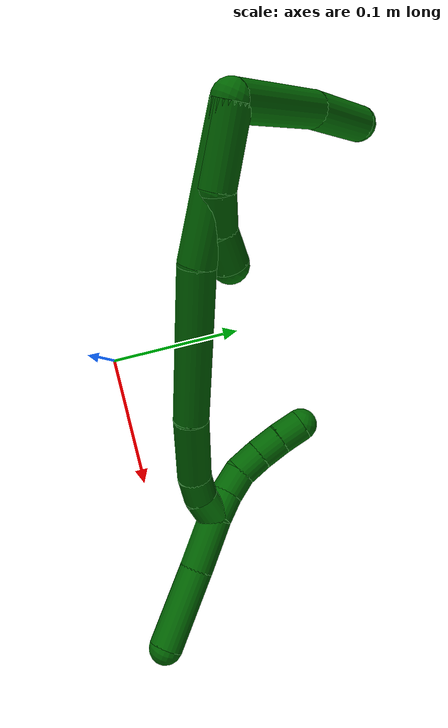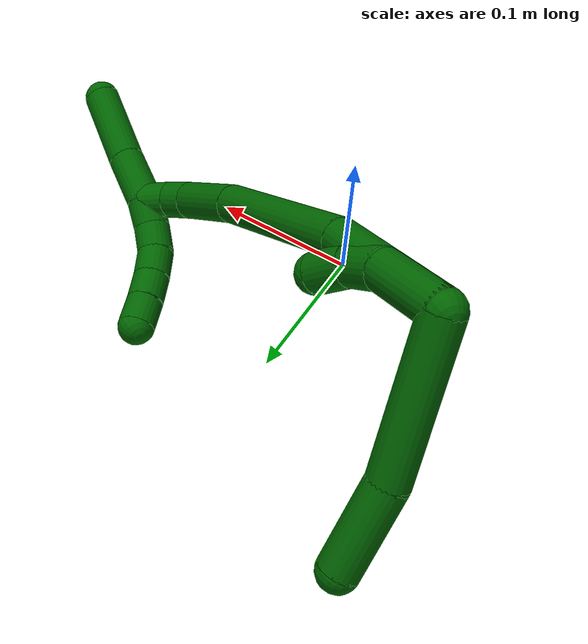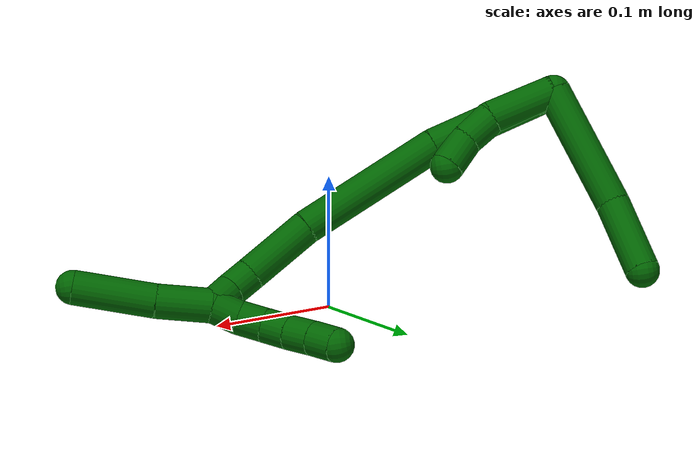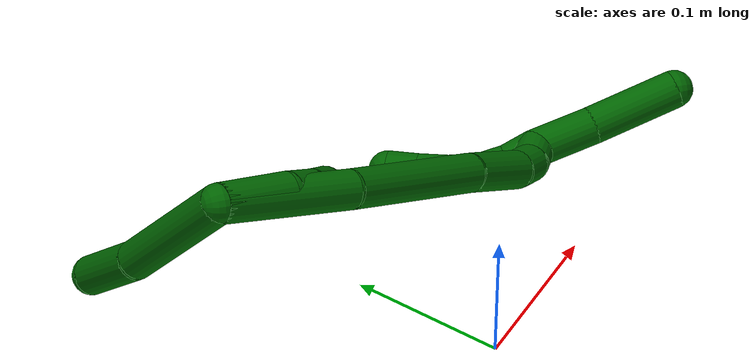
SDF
<sdf version="1.7">
 <world name="default">
  <model name="6">
   <static>0</static>
   <link name="6">
    <collision name="collision-cylinder-e_1_2_8">
     <pose>-0.021335 0.039467 0.014439 -1.22007 -0.469765 0.331458</pose>
     <geometry><cylinder><radius>0.0125</radius><length>0.094262</length></cylinder></geometry>
     <surface>
      <friction><ode><mu>1.16</mu><mu2>1.16</mu2><slip1>0</slip1><slip2>0</slip2></ode></friction>
      <contact><ode><kp>1e+06</kp><kd>1</kd><max_vel>0</max_vel><min_depth>0.001</min_depth></ode></contact>
     </surface>
    </collision>
    <visual name="visual-cylinder-e_1_2_8">
     <pose>-0.021335 0.039467 0.014439 -1.22007 -0.469765 0.331458</pose>
     <geometry><cylinder><radius>0.0125</radius><length>0.094262</length></cylinder></geometry>
     <material><ambient>0 0.392157 0.003922 1</ambient></material>
    </visual>
    <collision name="collision-cylinder-e_2_8_6">
     <pose>-0.050918 0.104812 0.035121 -1.33409 -0.30044 0.237259</pose>
     <geometry><cylinder><radius>0.0125</radius><length>0.055738</length></cylinder></geometry>
     <surface>
      <friction><ode><mu>1.16</mu><mu2>1.16</mu2><slip1>0</slip1><slip2>0</slip2></ode></friction>
      <contact><ode><kp>1e+06</kp><kd>1</kd><max_vel>0</max_vel><min_depth>0.001</min_depth></ode></contact>
     </surface>
    </collision>
    <visual name="visual-cylinder-e_2_8_6">
     <pose>-0.050918 0.104812 0.035121 -1.33409 -0.30044 0.237259</pose>
     <geometry><cylinder><radius>0.0125</radius><length>0.055738</length></cylinder></geometry>
     <material><ambient>0 0.392157 0.003922 1</ambient></material>
    </visual>
    <collision name="collision-cylinder-e_1_2_9">
     <pose>-0.001204 0.006618 -0.023984 -2.87236 -0.04835 0.353343</pose>
     <geometry><cylinder><radius>0.0125</radius><length>0.049819</length></cylinder></geometry>
     <surface>
      <friction><ode><mu>1.16</mu><mu2>1.16</mu2><slip1>0</slip1><slip2>0</slip2></ode></friction>
      <contact><ode><kp>1e+06</kp><kd>1</kd><max_vel>0</max_vel><min_depth>0.001</min_depth></ode></contact>
     </surface>
    </collision>
    <visual name="visual-cylinder-e_1_2_9">
     <pose>-0.001204 0.006618 -0.023984 -2.87236 -0.04835 0.353343</pose>
     <geometry><cylinder><radius>0.0125</radius><length>0.049819</length></cylinder></geometry>
     <material><ambient>0 0.392157 0.003922 1</ambient></material>
    </visual>
    <collision name="collision-cylinder-e_2_9_10">
     <pose>-0.004356 0.020109 -0.058242 -2.55199 -0.156343 0.504927</pose>
     <geometry><cylinder><radius>0.0125</radius><length>0.025026</length></cylinder></geometry>
     <surface>
      <friction><ode><mu>1.16</mu><mu2>1.16</mu2><slip1>0</slip1><slip2>0</slip2></ode></friction>
      <contact><ode><kp>1e+06</kp><kd>1</kd><max_vel>0</max_vel><min_depth>0.001</min_depth></ode></contact>
     </surface>
    </collision>
    <visual name="visual-cylinder-e_2_9_10">
     <pose>-0.004356 0.020109 -0.058242 -2.55199 -0.156343 0.504927</pose>
     <geometry><cylinder><radius>0.0125</radius><length>0.025026</length></cylinder></geometry>
     <material><ambient>0 0.392157 0.003922 1</ambient></material>
    </visual>
    <collision name="collision-cylinder-e_3_10_5">
     <pose>-0.008104 0.036605 -0.076411 -2.25789 -0.143591 0.301759</pose>
     <geometry><cylinder><radius>0.0125</radius><length>0.025155</length></cylinder></geometry>
     <surface>
      <friction><ode><mu>1.16</mu><mu2>1.16</mu2><slip1>0</slip1><slip2>0</slip2></ode></friction>
      <contact><ode><kp>1e+06</kp><kd>1</kd><max_vel>0</max_vel><min_depth>0.001</min_depth></ode></contact>
     </surface>
    </collision>
    <visual name="visual-cylinder-e_3_10_5">
     <pose>-0.008104 0.036605 -0.076411 -2.25789 -0.143591 0.301759</pose>
     <geometry><cylinder><radius>0.0125</radius><length>0.025155</length></cylinder></geometry>
     <material><ambient>0 0.392157 0.003922 1</ambient></material>
    </visual>
    <collision name="collision-cylinder-e_1_2_11">
     <pose>-0.004779 0.01209 -0.046139 -2.88533 -0.099859 0.739986</pose>
     <geometry><cylinder><radius>0.0125</radius><length>0.09587</length></cylinder></geometry>
     <surface>
      <friction><ode><mu>1.16</mu><mu2>1.16</mu2><slip1>0</slip1><slip2>0</slip2></ode></friction>
      <contact><ode><kp>1e+06</kp><kd>1</kd><max_vel>0</max_vel><min_depth>0.001</min_depth></ode></contact>
     </surface>
    </collision>
    <visual name="visual-cylinder-e_1_2_11">
     <pose>-0.004779 0.01209 -0.046139 -2.88533 -0.099859 0.739986</pose>
     <geometry><cylinder><radius>0.0125</radius><length>0.09587</length></cylinder></geometry>
     <material><ambient>0 0.392157 0.003922 1</ambient></material>
    </visual>
    <collision name="collision-cylinder-e_2_11_12">
     <pose>-0.015637 0.047989 -0.141786 -2.69333 -0.110222 0.474872</pose>
     <geometry><cylinder><radius>0.0125</radius><length>0.110542</length></cylinder></geometry>
     <surface>
      <friction><ode><mu>1.16</mu><mu2>1.16</mu2><slip1>0</slip1><slip2>0</slip2></ode></friction>
      <contact><ode><kp>1e+06</kp><kd>1</kd><max_vel>0</max_vel><min_depth>0.001</min_depth></ode></contact>
     </surface>
    </collision>
    <visual name="visual-cylinder-e_2_11_12">
     <pose>-0.015637 0.047989 -0.141786 -2.69333 -0.110222 0.474872</pose>
     <geometry><cylinder><radius>0.0125</radius><length>0.110542</length></cylinder></geometry>
     <material><ambient>0 0.392157 0.003922 1</ambient></material>
    </visual>
    <collision name="collision-cylinder-e_3_12_13">
     <pose>-0.026159 0.085726 -0.213392 -2.5792 -0.16845 0.56872</pose>
     <geometry><cylinder><radius>0.0125</radius><length>0.052993</length></cylinder></geometry>
     <surface>
      <friction><ode><mu>1.16</mu><mu2>1.16</mu2><slip1>0</slip1><slip2>0</slip2></ode></friction>
      <contact><ode><kp>1e+06</kp><kd>1</kd><max_vel>0</max_vel><min_depth>0.001</min_depth></ode></contact>
     </surface>
    </collision>
    <visual name="visual-cylinder-e_3_12_13">
     <pose>-0.026159 0.085726 -0.213392 -2.5792 -0.16845 0.56872</pose>
     <geometry><cylinder><radius>0.0125</radius><length>0.052993</length></cylinder></geometry>
     <material><ambient>0 0.392157 0.003922 1</ambient></material>
    </visual>
    <collision name="collision-cylinder-e_4_13_14">
     <pose>-0.030486 0.106055 -0.243268 -2.45299 0.011532 -0.032157</pose>
     <geometry><cylinder><radius>0.0125</radius><length>0.020147</length></cylinder></geometry>
     <surface>
      <friction><ode><mu>1.16</mu><mu2>1.16</mu2><slip1>0</slip1><slip2>0</slip2></ode></friction>
      <contact><ode><kp>1e+06</kp><kd>1</kd><max_vel>0</max_vel><min_depth>0.001</min_depth></ode></contact>
     </surface>
    </collision>
    <visual name="visual-cylinder-e_4_13_14">
     <pose>-0.030486 0.106055 -0.243268 -2.45299 0.011532 -0.032157</pose>
     <geometry><cylinder><radius>0.0125</radius><length>0.020147</length></cylinder></geometry>
     <material><ambient>0 0.392157 0.003922 1</ambient></material>
    </visual>
    <collision name="collision-cylinder-e_5_14_1">
     <pose>-0.027678 0.120354 -0.256954 -2.21309 0.266425 -0.522964</pose>
     <geometry><cylinder><radius>0.0125</radius><length>0.020447</length></cylinder></geometry>
     <surface>
      <friction><ode><mu>1.16</mu><mu2>1.16</mu2><slip1>0</slip1><slip2>0</slip2></ode></friction>
      <contact><ode><kp>1e+06</kp><kd>1</kd><max_vel>0</max_vel><min_depth>0.001</min_depth></ode></contact>
     </surface>
    </collision>
    <visual name="visual-cylinder-e_5_14_1">
     <pose>-0.027678 0.120354 -0.256954 -2.21309 0.266425 -0.522964</pose>
     <geometry><cylinder><radius>0.0125</radius><length>0.020447</length></cylinder></geometry>
     <material><ambient>0 0.392157 0.003922 1</ambient></material>
    </visual>
    <collision name="collision-cylinder-e_1_1_15">
     <pose>-0.02015 0.126017 -0.282286 3.02708 0.242486 2.26212</pose>
     <geometry><cylinder><radius>0.0125</radius><length>0.040282</length></cylinder></geometry>
     <surface>
      <friction><ode><mu>1.16</mu><mu2>1.16</mu2><slip1>0</slip1><slip2>0</slip2></ode></friction>
      <contact><ode><kp>1e+06</kp><kd>1</kd><max_vel>0</max_vel><min_depth>0.001</min_depth></ode></contact>
     </surface>
    </collision>
    <visual name="visual-cylinder-e_1_1_15">
     <pose>-0.02015 0.126017 -0.282286 3.02708 0.242486 2.26212</pose>
     <geometry><cylinder><radius>0.0125</radius><length>0.040282</length></cylinder></geometry>
     <material><ambient>0 0.392157 0.003922 1</ambient></material>
    </visual>
    <collision name="collision-cylinder-e_2_15_4">
     <pose>-0.006643 0.118653 -0.329818 2.96107 0.294627 2.04623</pose>
     <geometry><cylinder><radius>0.0125</radius><length>0.059718</length></cylinder></geometry>
     <surface>
      <friction><ode><mu>1.16</mu><mu2>1.16</mu2><slip1>0</slip1><slip2>0</slip2></ode></friction>
      <contact><ode><kp>1e+06</kp><kd>1</kd><max_vel>0</max_vel><min_depth>0.001</min_depth></ode></contact>
     </surface>
    </collision>
    <visual name="visual-cylinder-e_2_15_4">
     <pose>-0.006643 0.118653 -0.329818 2.96107 0.294627 2.04623</pose>
     <geometry><cylinder><radius>0.0125</radius><length>0.059718</length></cylinder></geometry>
     <material><ambient>0 0.392157 0.003922 1</ambient></material>
    </visual>
    <collision name="collision-cylinder-e_1_1_16">
     <pose>-0.029224 0.131914 -0.254578 -0.416354 -0.437607 0.093874</pose>
     <geometry><cylinder><radius>0.0125</radius><length>0.02</length></cylinder></geometry>
     <surface>
      <friction><ode><mu>1.16</mu><mu2>1.16</mu2><slip1>0</slip1><slip2>0</slip2></ode></friction>
      <contact><ode><kp>1e+06</kp><kd>1</kd><max_vel>0</max_vel><min_depth>0.001</min_depth></ode></contact>
     </surface>
    </collision>
    <visual name="visual-cylinder-e_1_1_16">
     <pose>-0.029224 0.131914 -0.254578 -0.416354 -0.437607 0.093874</pose>
     <geometry><cylinder><radius>0.0125</radius><length>0.02</length></cylinder></geometry>
     <material><ambient>0 0.392157 0.003922 1</ambient></material>
    </visual>
    <collision name="collision-cylinder-e_2_16_17">
     <pose>-0.035765 0.139207 -0.237266 -0.382231 -0.232451 0.04517</pose>
     <geometry><cylinder><radius>0.0125</radius><length>0.02</length></cylinder></geometry>
     <surface>
      <friction><ode><mu>1.16</mu><mu2>1.16</mu2><slip1>0</slip1><slip2>0</slip2></ode></friction>
      <contact><ode><kp>1e+06</kp><kd>1</kd><max_vel>0</max_vel><min_depth>0.001</min_depth></ode></contact>
     </surface>
    </collision>
    <visual name="visual-cylinder-e_2_16_17">
     <pose>-0.035765 0.139207 -0.237266 -0.382231 -0.232451 0.04517</pose>
     <geometry><cylinder><radius>0.0125</radius><length>0.02</length></cylinder></geometry>
     <material><ambient>0 0.392157 0.003922 1</ambient></material>
    </visual>
    <collision name="collision-cylinder-e_3_17_18">
     <pose>-0.037971 0.148015 -0.219683 -0.544402 0.009779 -0.00273</pose>
     <geometry><cylinder><radius>0.0125</radius><length>0.02</length></cylinder></geometry>
     <surface>
      <friction><ode><mu>1.16</mu><mu2>1.16</mu2><slip1>0</slip1><slip2>0</slip2></ode></friction>
      <contact><ode><kp>1e+06</kp><kd>1</kd><max_vel>0</max_vel><min_depth>0.001</min_depth></ode></contact>
     </surface>
    </collision>
    <visual name="visual-cylinder-e_3_17_18">
     <pose>-0.037971 0.148015 -0.219683 -0.544402 0.009779 -0.00273</pose>
     <geometry><cylinder><radius>0.0125</radius><length>0.02</length></cylinder></geometry>
     <material><ambient>0 0.392157 0.003922 1</ambient></material>
    </visual>
    <collision name="collision-cylinder-e_4_18_19">
     <pose>-0.036826 0.158463 -0.202694 -0.558346 0.104961 -0.030114</pose>
     <geometry><cylinder><radius>0.0125</radius><length>0.02</length></cylinder></geometry>
     <surface>
      <friction><ode><mu>1.16</mu><mu2>1.16</mu2><slip1>0</slip1><slip2>0</slip2></ode></friction>
      <contact><ode><kp>1e+06</kp><kd>1</kd><max_vel>0</max_vel><min_depth>0.001</min_depth></ode></contact>
     </surface>
    </collision>
    <visual name="visual-cylinder-e_4_18_19">
     <pose>-0.036826 0.158463 -0.202694 -0.558346 0.104961 -0.030114</pose>
     <geometry><cylinder><radius>0.0125</radius><length>0.02</length></cylinder></geometry>
     <material><ambient>0 0.392157 0.003922 1</ambient></material>
    </visual>
    <collision name="collision-cylinder-e_5_19_3">
     <pose>-0.034422 0.169481 -0.186191 -0.619067 0.135969 -0.043545</pose>
     <geometry><cylinder><radius>0.0125</radius><length>0.02</length></cylinder></geometry>
     <surface>
      <friction><ode><mu>1.16</mu><mu2>1.16</mu2><slip1>0</slip1><slip2>0</slip2></ode></friction>
      <contact><ode><kp>1e+06</kp><kd>1</kd><max_vel>0</max_vel><min_depth>0.001</min_depth></ode></contact>
     </surface>
    </collision>
    <visual name="visual-cylinder-e_5_19_3">
     <pose>-0.034422 0.169481 -0.186191 -0.619067 0.135969 -0.043545</pose>
     <geometry><cylinder><radius>0.0125</radius><length>0.02</length></cylinder></geometry>
     <material><ambient>0 0.392157 0.003922 1</ambient></material>
    </visual>
    <collision name="collision-sphere-3">
     <pose>-0.033067 0.17523 -0.178122 0 -0 0</pose>
     <geometry><sphere><radius>0.0125</radius></sphere></geometry>
     <surface>
      <friction><ode><mu>1.16</mu><mu2>1.16</mu2><slip1>0</slip1><slip2>0</slip2></ode></friction>
      <contact><ode><kp>1e+06</kp><kd>1</kd><max_vel>0</max_vel><min_depth>0.001</min_depth></ode></contact>
     </surface>
    </collision>
    <visual name="visual-sphere-3">
     <pose>-0.033067 0.17523 -0.178122 0 -0 0</pose>
     <geometry><sphere><radius>0.0125</radius></sphere></geometry>
     <material><ambient>0 0.392157 0.003922 1</ambient></material>
    </visual>
    <collision name="collision-sphere-19">
     <pose>-0.035778 0.163731 -0.19426 0 -0 0</pose>
     <geometry><sphere><radius>0.0125</radius></sphere></geometry>
     <surface>
      <friction><ode><mu>1.16</mu><mu2>1.16</mu2><slip1>0</slip1><slip2>0</slip2></ode></friction>
      <contact><ode><kp>1e+06</kp><kd>1</kd><max_vel>0</max_vel><min_depth>0.001</min_depth></ode></contact>
     </surface>
    </collision>
    <visual name="visual-sphere-19">
     <pose>-0.035778 0.163731 -0.19426 0 -0 0</pose>
     <geometry><sphere><radius>0.0125</radius></sphere></geometry>
     <material><ambient>0 0.392157 0.003922 1</ambient></material>
    </visual>
    <collision name="collision-sphere-5">
     <pose>-0.009904 0.046228 -0.084307 0 -0 0</pose>
     <geometry><sphere><radius>0.0125</radius></sphere></geometry>
     <surface>
      <friction><ode><mu>1.16</mu><mu2>1.16</mu2><slip1>0</slip1><slip2>0</slip2></ode></friction>
      <contact><ode><kp>1e+06</kp><kd>1</kd><max_vel>0</max_vel><min_depth>0.001</min_depth></ode></contact>
     </surface>
    </collision>
    <visual name="visual-sphere-5">
     <pose>-0.009904 0.046228 -0.084307 0 -0 0</pose>
     <geometry><sphere><radius>0.0125</radius></sphere></geometry>
     <material><ambient>0 0.392157 0.003922 1</ambient></material>
    </visual>
    <collision name="collision-sphere-10">
     <pose>-0.006305 0.026982 -0.068515 0 -0 0</pose>
     <geometry><sphere><radius>0.0125</radius></sphere></geometry>
     <surface>
      <friction><ode><mu>1.16</mu><mu2>1.16</mu2><slip1>0</slip1><slip2>0</slip2></ode></friction>
      <contact><ode><kp>1e+06</kp><kd>1</kd><max_vel>0</max_vel><min_depth>0.001</min_depth></ode></contact>
     </surface>
    </collision>
    <visual name="visual-sphere-10">
     <pose>-0.006305 0.026982 -0.068515 0 -0 0</pose>
     <geometry><sphere><radius>0.0125</radius></sphere></geometry>
     <material><ambient>0 0.392157 0.003922 1</ambient></material>
    </visual>
    <collision name="collision-sphere-6">
     <pose>-0.059165 0.130691 0.041364 0 -0 0</pose>
     <geometry><sphere><radius>0.0125</radius></sphere></geometry>
     <surface>
      <friction><ode><mu>1.16</mu><mu2>1.16</mu2><slip1>0</slip1><slip2>0</slip2></ode></friction>
      <contact><ode><kp>1e+06</kp><kd>1</kd><max_vel>0</max_vel><min_depth>0.001</min_depth></ode></contact>
     </surface>
    </collision>
    <visual name="visual-sphere-6">
     <pose>-0.059165 0.130691 0.041364 0 -0 0</pose>
     <geometry><sphere><radius>0.0125</radius></sphere></geometry>
     <material><ambient>0 0.392157 0.003922 1</ambient></material>
    </visual>
    <collision name="collision-sphere-9">
     <pose>-0.002408 0.013236 -0.047968 0 -0 0</pose>
     <geometry><sphere><radius>0.0125</radius></sphere></geometry>
     <surface>
      <friction><ode><mu>1.16</mu><mu2>1.16</mu2><slip1>0</slip1><slip2>0</slip2></ode></friction>
      <contact><ode><kp>1e+06</kp><kd>1</kd><max_vel>0</max_vel><min_depth>0.001</min_depth></ode></contact>
     </surface>
    </collision>
    <visual name="visual-sphere-9">
     <pose>-0.002408 0.013236 -0.047968 0 -0 0</pose>
     <geometry><sphere><radius>0.0125</radius></sphere></geometry>
     <material><ambient>0 0.392157 0.003922 1</ambient></material>
    </visual>
    <collision name="collision-sphere-2">
     <geometry><sphere><radius>0.0125</radius></sphere></geometry>
     <surface>
      <friction><ode><mu>1.16</mu><mu2>1.16</mu2><slip1>0</slip1><slip2>0</slip2></ode></friction>
      <contact><ode><kp>1e+06</kp><kd>1</kd><max_vel>0</max_vel><min_depth>0.001</min_depth></ode></contact>
     </surface>
    </collision>
    <visual name="visual-sphere-2">
     <geometry><sphere><radius>0.0125</radius></sphere></geometry>
     <material><ambient>0 0.392157 0.003922 1</ambient></material>
    </visual>
    <collision name="collision-sphere-8">
     <pose>-0.04267 0.078934 0.028878 0 -0 0</pose>
     <geometry><sphere><radius>0.0125</radius></sphere></geometry>
     <surface>
      <friction><ode><mu>1.16</mu><mu2>1.16</mu2><slip1>0</slip1><slip2>0</slip2></ode></friction>
      <contact><ode><kp>1e+06</kp><kd>1</kd><max_vel>0</max_vel><min_depth>0.001</min_depth></ode></contact>
     </surface>
    </collision>
    <visual name="visual-sphere-8">
     <pose>-0.04267 0.078934 0.028878 0 -0 0</pose>
     <geometry><sphere><radius>0.0125</radius></sphere></geometry>
     <material><ambient>0 0.392157 0.003922 1</ambient></material>
    </visual>
    <collision name="collision-sphere-11">
     <pose>-0.009558 0.024179 -0.092277 0 -0 0</pose>
     <geometry><sphere><radius>0.0125</radius></sphere></geometry>
     <surface>
      <friction><ode><mu>1.16</mu><mu2>1.16</mu2><slip1>0</slip1><slip2>0</slip2></ode></friction>
      <contact><ode><kp>1e+06</kp><kd>1</kd><max_vel>0</max_vel><min_depth>0.001</min_depth></ode></contact>
     </surface>
    </collision>
    <visual name="visual-sphere-11">
     <pose>-0.009558 0.024179 -0.092277 0 -0 0</pose>
     <geometry><sphere><radius>0.0125</radius></sphere></geometry>
     <material><ambient>0 0.392157 0.003922 1</ambient></material>
    </visual>
    <collision name="collision-sphere-12">
     <pose>-0.021717 0.071798 -0.191294 0 -0 0</pose>
     <geometry><sphere><radius>0.0125</radius></sphere></geometry>
     <surface>
      <friction><ode><mu>1.16</mu><mu2>1.16</mu2><slip1>0</slip1><slip2>0</slip2></ode></friction>
      <contact><ode><kp>1e+06</kp><kd>1</kd><max_vel>0</max_vel><min_depth>0.001</min_depth></ode></contact>
     </surface>
    </collision>
    <visual name="visual-sphere-12">
     <pose>-0.021717 0.071798 -0.191294 0 -0 0</pose>
     <geometry><sphere><radius>0.0125</radius></sphere></geometry>
     <material><ambient>0 0.392157 0.003922 1</ambient></material>
    </visual>
    <collision name="collision-sphere-13">
     <pose>-0.030602 0.099654 -0.235491 0 -0 0</pose>
     <geometry><sphere><radius>0.0125</radius></sphere></geometry>
     <surface>
      <friction><ode><mu>1.16</mu><mu2>1.16</mu2><slip1>0</slip1><slip2>0</slip2></ode></friction>
      <contact><ode><kp>1e+06</kp><kd>1</kd><max_vel>0</max_vel><min_depth>0.001</min_depth></ode></contact>
     </surface>
    </collision>
    <visual name="visual-sphere-13">
     <pose>-0.030602 0.099654 -0.235491 0 -0 0</pose>
     <geometry><sphere><radius>0.0125</radius></sphere></geometry>
     <material><ambient>0 0.392157 0.003922 1</ambient></material>
    </visual>
    <collision name="collision-sphere-14">
     <pose>-0.030369 0.112456 -0.251046 0 -0 0</pose>
     <geometry><sphere><radius>0.0125</radius></sphere></geometry>
     <surface>
      <friction><ode><mu>1.16</mu><mu2>1.16</mu2><slip1>0</slip1><slip2>0</slip2></ode></friction>
      <contact><ode><kp>1e+06</kp><kd>1</kd><max_vel>0</max_vel><min_depth>0.001</min_depth></ode></contact>
     </surface>
    </collision>
    <visual name="visual-sphere-14">
     <pose>-0.030369 0.112456 -0.251046 0 -0 0</pose>
     <geometry><sphere><radius>0.0125</radius></sphere></geometry>
     <material><ambient>0 0.392157 0.003922 1</ambient></material>
    </visual>
    <collision name="collision-sphere-1">
     <pose>-0.024986 0.128251 -0.262862 0 -0 0</pose>
     <geometry><sphere><radius>0.0125</radius></sphere></geometry>
     <surface>
      <friction><ode><mu>1.16</mu><mu2>1.16</mu2><slip1>0</slip1><slip2>0</slip2></ode></friction>
      <contact><ode><kp>1e+06</kp><kd>1</kd><max_vel>0</max_vel><min_depth>0.001</min_depth></ode></contact>
     </surface>
    </collision>
    <visual name="visual-sphere-1">
     <pose>-0.024986 0.128251 -0.262862 0 -0 0</pose>
     <geometry><sphere><radius>0.0125</radius></sphere></geometry>
     <material><ambient>0 0.392157 0.003922 1</ambient></material>
    </visual>
    <collision name="collision-sphere-18">
     <pose>-0.037873 0.153194 -0.211129 0 -0 0</pose>
     <geometry><sphere><radius>0.0125</radius></sphere></geometry>
     <surface>
      <friction><ode><mu>1.16</mu><mu2>1.16</mu2><slip1>0</slip1><slip2>0</slip2></ode></friction>
      <contact><ode><kp>1e+06</kp><kd>1</kd><max_vel>0</max_vel><min_depth>0.001</min_depth></ode></contact>
     </surface>
    </collision>
    <visual name="visual-sphere-18">
     <pose>-0.037873 0.153194 -0.211129 0 -0 0</pose>
     <geometry><sphere><radius>0.0125</radius></sphere></geometry>
     <material><ambient>0 0.392157 0.003922 1</ambient></material>
    </visual>
    <collision name="collision-sphere-15">
     <pose>-0.015314 0.123783 -0.30171 0 -0 0</pose>
     <geometry><sphere><radius>0.0125</radius></sphere></geometry>
     <surface>
      <friction><ode><mu>1.16</mu><mu2>1.16</mu2><slip1>0</slip1><slip2>0</slip2></ode></friction>
      <contact><ode><kp>1e+06</kp><kd>1</kd><max_vel>0</max_vel><min_depth>0.001</min_depth></ode></contact>
     </surface>
    </collision>
    <visual name="visual-sphere-15">
     <pose>-0.015314 0.123783 -0.30171 0 -0 0</pose>
     <geometry><sphere><radius>0.0125</radius></sphere></geometry>
     <material><ambient>0 0.392157 0.003922 1</ambient></material>
    </visual>
    <collision name="collision-sphere-4">
     <pose>0.002027 0.113523 -0.357926 0 -0 0</pose>
     <geometry><sphere><radius>0.0125</radius></sphere></geometry>
     <surface>
      <friction><ode><mu>1.16</mu><mu2>1.16</mu2><slip1>0</slip1><slip2>0</slip2></ode></friction>
      <contact><ode><kp>1e+06</kp><kd>1</kd><max_vel>0</max_vel><min_depth>0.001</min_depth></ode></contact>
     </surface>
    </collision>
    <visual name="visual-sphere-4">
     <pose>0.002027 0.113523 -0.357926 0 -0 0</pose>
     <geometry><sphere><radius>0.0125</radius></sphere></geometry>
     <material><ambient>0 0.392157 0.003922 1</ambient></material>
    </visual>
    <collision name="collision-sphere-16">
     <pose>-0.033462 0.135577 -0.246295 0 -0 0</pose>
     <geometry><sphere><radius>0.0125</radius></sphere></geometry>
     <surface>
      <friction><ode><mu>1.16</mu><mu2>1.16</mu2><slip1>0</slip1><slip2>0</slip2></ode></friction>
      <contact><ode><kp>1e+06</kp><kd>1</kd><max_vel>0</max_vel><min_depth>0.001</min_depth></ode></contact>
     </surface>
    </collision>
    <visual name="visual-sphere-16">
     <pose>-0.033462 0.135577 -0.246295 0 -0 0</pose>
     <geometry><sphere><radius>0.0125</radius></sphere></geometry>
     <material><ambient>0 0.392157 0.003922 1</ambient></material>
    </visual>
    <collision name="collision-sphere-17">
     <pose>-0.038069 0.142836 -0.228237 0 -0 0</pose>
     <geometry><sphere><radius>0.0125</radius></sphere></geometry>
     <surface>
      <friction><ode><mu>1.16</mu><mu2>1.16</mu2><slip1>0</slip1><slip2>0</slip2></ode></friction>
      <contact><ode><kp>1e+06</kp><kd>1</kd><max_vel>0</max_vel><min_depth>0.001</min_depth></ode></contact>
     </surface>
    </collision>
    <visual name="visual-sphere-17">
     <pose>-0.038069 0.142836 -0.228237 0 -0 0</pose>
     <geometry><sphere><radius>0.0125</radius></sphere></geometry>
     <material><ambient>0 0.392157 0.003922 1</ambient></material>
    </visual>
    <inertial>
     <pose>-0.019557 0.072032 -0.127855 0 -0 0</pose>
     <mass>0.75</mass>
     <inertia>
      <ixx>0.000421</ixx>
      <ixy>0</ixy>
      <ixz>0</ixz>
      <iyy>8.1e-05</iyy>
      <iyz>0</iyz>
      <izz>-0.000132</izz>
     </inertia>
    </inertial>
   </link>
   <pose>-0.112327 0.125277 0.171001 -1.28082 -0.922544 0.690904</pose>
  </model>
 </world>
</sdf>
